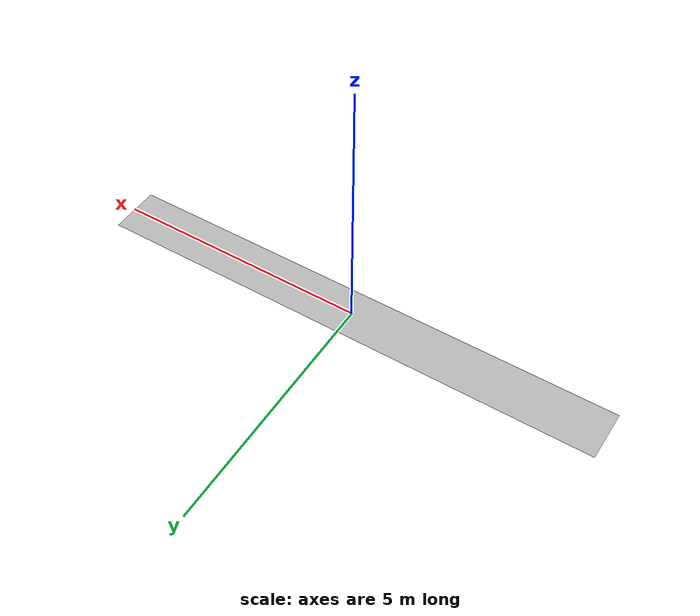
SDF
<?xml version="1.0"?>
<sdf version="1.5">
  <model name="river_model">
<static>
  true
</static>
    <link name="river_link">
      <inertial>
        <mass>0.390</mass>
        <inertia>
          <ixx>0.00058</ixx>
          <ixy>0</ixy>
          <ixz>0</ixz>
          <iyy>0.00058</iyy>
          <iyz>0</iyz>
          <izz>0.00019</izz>
        </inertia>
      </inertial>
      <collision name="river_collision">
        <geometry>
          <mesh>
            <uri>model://stream/meshes/river_olaf.dae</uri>
          </mesh>
        </geometry>
        <surface>
          <friction>
            <ode>
              <mu>1.0</mu>
              <mu2>1.0</mu2>
            </ode>
          </friction>
          <contact>
            <ode>
              <kp>10000000.0</kp>
              <kd>1.0</kd>
              <min_depth>0.001</min_depth>
              <max_vel>0.1</max_vel>
            </ode>
          </contact>
        </surface>
      </collision>
      <visual name="stream_visual">
        <geometry>
          <mesh>
            <uri>model://stream/meshes/river_olaf.dae</uri>
          </mesh>
        </geometry>
      </visual>
    </link>
  </model>
</sdf>
